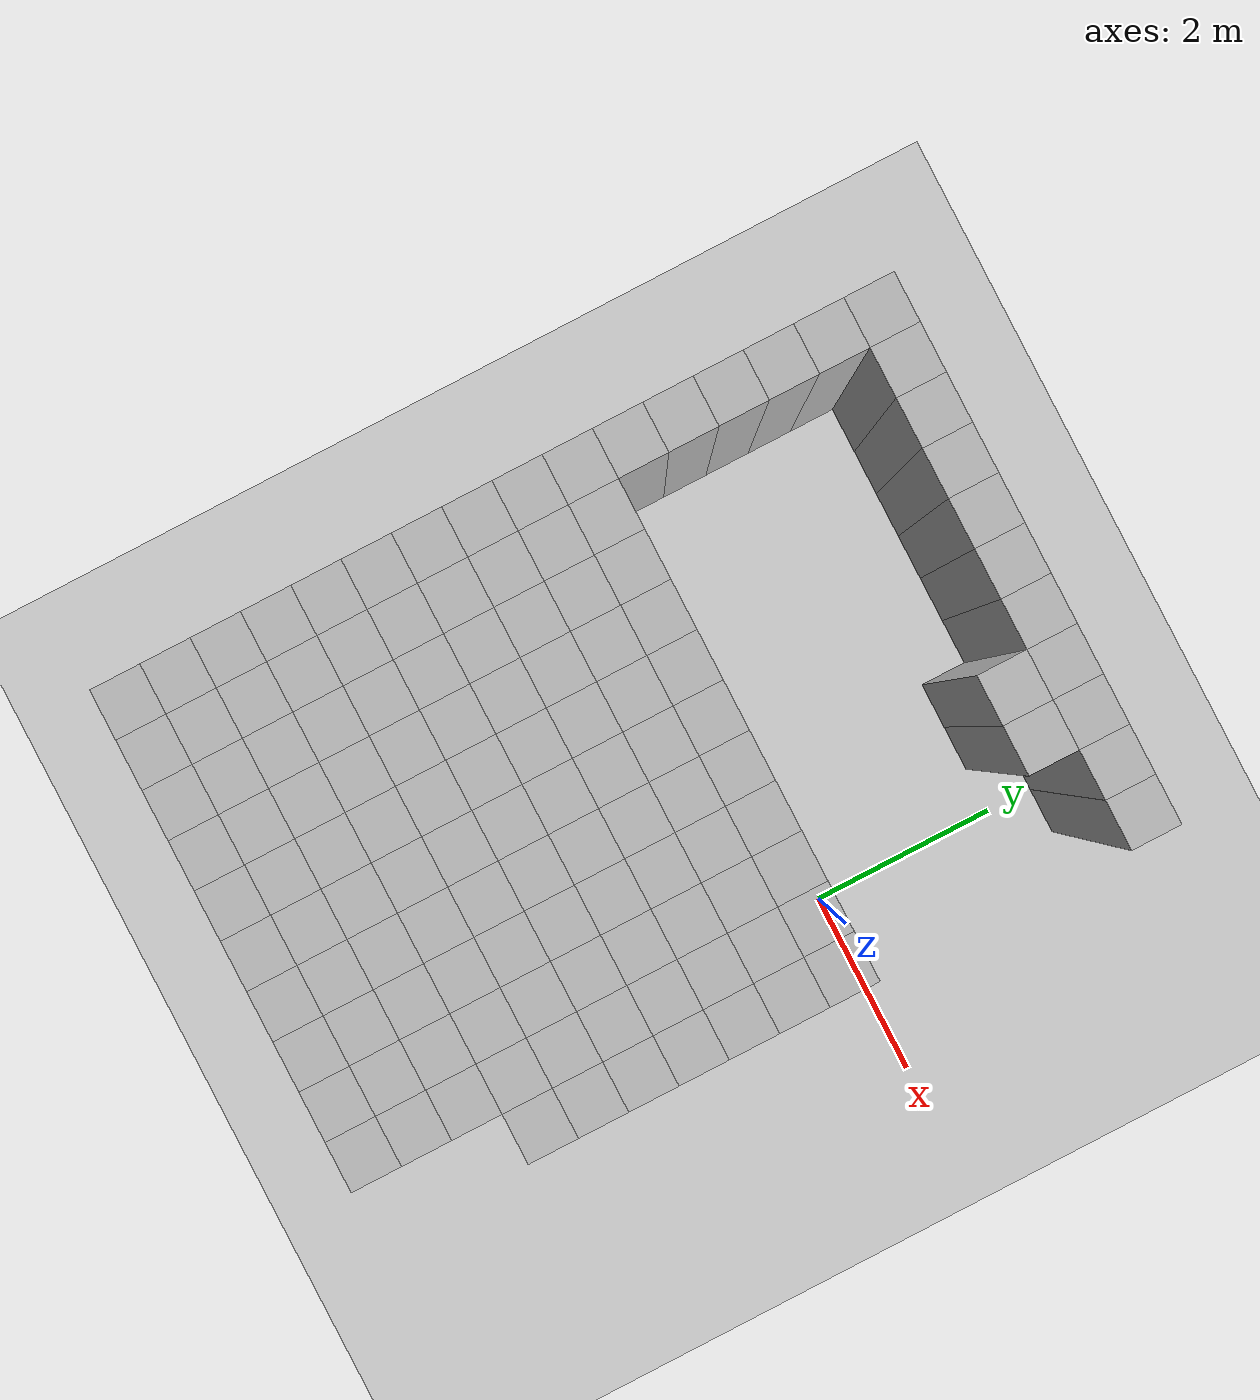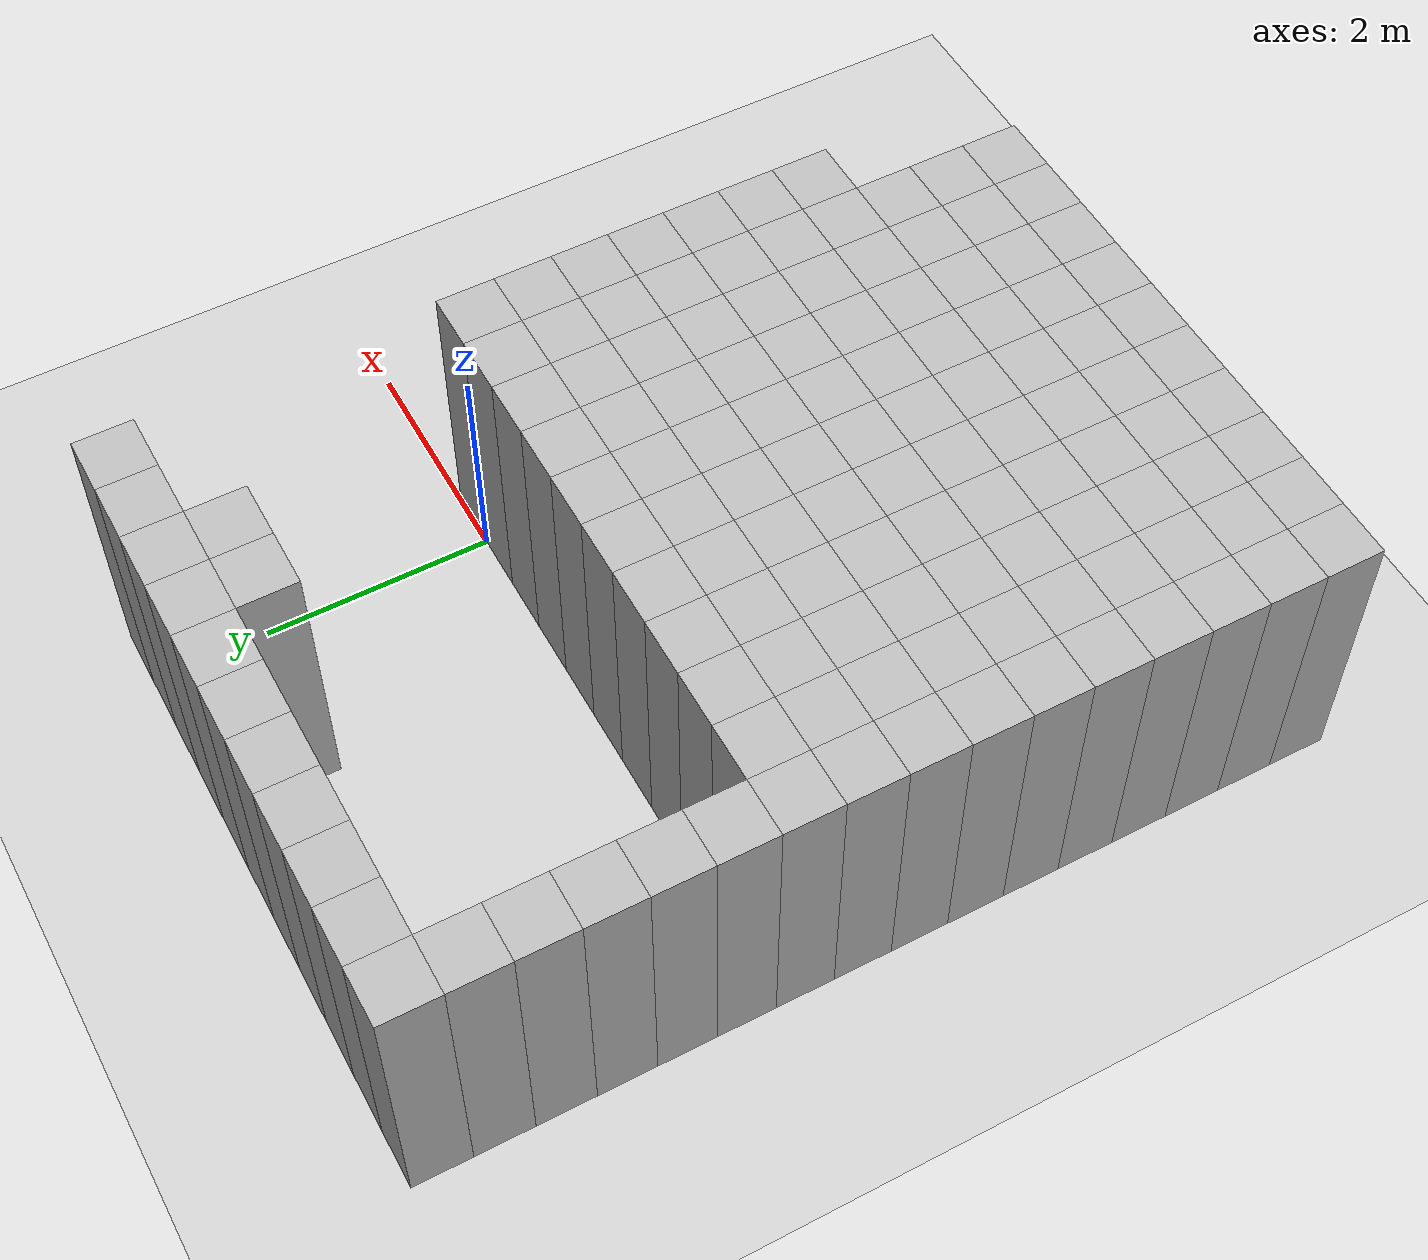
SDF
<sdf version="1.6">
 <world name="map_world">
  <include><uri>model://ground_plane</uri></include>
  <include><uri>model://sun</uri></include>
  <model name="wall_0">
   <static>true</static>
   <pose>-4.750 2.750 1.250 0 0 0</pose>
   <link name="link">
    <collision name="collision"><geometry><box><size>0.500 0.500 2.500</size></box></geometry></collision>
    <visual name="visual"><geometry><box><size>0.500 0.500 2.500</size></box></geometry></visual>
   </link>
  </model>
  <model name="wall_1">
   <static>true</static>
   <pose>-4.250 2.750 1.250 0 0 0</pose>
   <link name="link">
    <collision name="collision"><geometry><box><size>0.500 0.500 2.500</size></box></geometry></collision>
    <visual name="visual"><geometry><box><size>0.500 0.500 2.500</size></box></geometry></visual>
   </link>
  </model>
  <model name="wall_2">
   <static>true</static>
   <pose>-3.750 2.750 1.250 0 0 0</pose>
   <link name="link">
    <collision name="collision"><geometry><box><size>0.500 0.500 2.500</size></box></geometry></collision>
    <visual name="visual"><geometry><box><size>0.500 0.500 2.500</size></box></geometry></visual>
   </link>
  </model>
  <model name="wall_3">
   <static>true</static>
   <pose>-3.250 2.750 1.250 0 0 0</pose>
   <link name="link">
    <collision name="collision"><geometry><box><size>0.500 0.500 2.500</size></box></geometry></collision>
    <visual name="visual"><geometry><box><size>0.500 0.500 2.500</size></box></geometry></visual>
   </link>
  </model>
  <model name="wall_4">
   <static>true</static>
   <pose>-2.750 2.750 1.250 0 0 0</pose>
   <link name="link">
    <collision name="collision"><geometry><box><size>0.500 0.500 2.500</size></box></geometry></collision>
    <visual name="visual"><geometry><box><size>0.500 0.500 2.500</size></box></geometry></visual>
   </link>
  </model>
  <model name="wall_5">
   <static>true</static>
   <pose>-2.250 2.750 1.250 0 0 0</pose>
   <link name="link">
    <collision name="collision"><geometry><box><size>0.500 0.500 2.500</size></box></geometry></collision>
    <visual name="visual"><geometry><box><size>0.500 0.500 2.500</size></box></geometry></visual>
   </link>
  </model>
  <model name="wall_6">
   <static>true</static>
   <pose>-1.750 2.750 1.250 0 0 0</pose>
   <link name="link">
    <collision name="collision"><geometry><box><size>0.500 0.500 2.500</size></box></geometry></collision>
    <visual name="visual"><geometry><box><size>0.500 0.500 2.500</size></box></geometry></visual>
   </link>
  </model>
  <model name="wall_7">
   <static>true</static>
   <pose>-1.250 2.750 1.250 0 0 0</pose>
   <link name="link">
    <collision name="collision"><geometry><box><size>0.500 0.500 2.500</size></box></geometry></collision>
    <visual name="visual"><geometry><box><size>0.500 0.500 2.500</size></box></geometry></visual>
   </link>
  </model>
  <model name="wall_8">
   <static>true</static>
   <pose>-0.750 2.750 1.250 0 0 0</pose>
   <link name="link">
    <collision name="collision"><geometry><box><size>0.500 0.500 2.500</size></box></geometry></collision>
    <visual name="visual"><geometry><box><size>0.500 0.500 2.500</size></box></geometry></visual>
   </link>
  </model>
  <model name="wall_9">
   <static>true</static>
   <pose>-0.250 2.750 1.250 0 0 0</pose>
   <link name="link">
    <collision name="collision"><geometry><box><size>0.500 0.500 2.500</size></box></geometry></collision>
    <visual name="visual"><geometry><box><size>0.500 0.500 2.500</size></box></geometry></visual>
   </link>
  </model>
  <model name="wall_10">
   <static>true</static>
   <pose>0.250 2.750 1.250 0 0 0</pose>
   <link name="link">
    <collision name="collision"><geometry><box><size>0.500 0.500 2.500</size></box></geometry></collision>
    <visual name="visual"><geometry><box><size>0.500 0.500 2.500</size></box></geometry></visual>
   </link>
  </model>
  <model name="wall_86">
   <static>true</static>
   <pose>-4.750 2.250 1.250 0 0 0</pose>
   <link name="link">
    <collision name="collision"><geometry><box><size>0.500 0.500 2.500</size></box></geometry></collision>
    <visual name="visual"><geometry><box><size>0.500 0.500 2.500</size></box></geometry></visual>
   </link>
  </model>
  <model name="wall_87">
   <static>true</static>
   <pose>-1.250 2.250 1.250 0 0 0</pose>
   <link name="link">
    <collision name="collision"><geometry><box><size>0.500 0.500 2.500</size></box></geometry></collision>
    <visual name="visual"><geometry><box><size>0.500 0.500 2.500</size></box></geometry></visual>
   </link>
  </model>
  <model name="wall_88">
   <static>true</static>
   <pose>-0.750 2.250 1.250 0 0 0</pose>
   <link name="link">
    <collision name="collision"><geometry><box><size>0.500 0.500 2.500</size></box></geometry></collision>
    <visual name="visual"><geometry><box><size>0.500 0.500 2.500</size></box></geometry></visual>
   </link>
  </model>
  <model name="wall_118">
   <static>true</static>
   <pose>-4.750 1.750 1.250 0 0 0</pose>
   <link name="link">
    <collision name="collision"><geometry><box><size>0.500 0.500 2.500</size></box></geometry></collision>
    <visual name="visual"><geometry><box><size>0.500 0.500 2.500</size></box></geometry></visual>
   </link>
  </model>
  <model name="wall_120">
   <static>true</static>
   <pose>-4.750 1.250 1.250 0 0 0</pose>
   <link name="link">
    <collision name="collision"><geometry><box><size>0.500 0.500 2.500</size></box></geometry></collision>
    <visual name="visual"><geometry><box><size>0.500 0.500 2.500</size></box></geometry></visual>
   </link>
  </model>
  <model name="wall_122">
   <static>true</static>
   <pose>-4.750 0.750 1.250 0 0 0</pose>
   <link name="link">
    <collision name="collision"><geometry><box><size>0.500 0.500 2.500</size></box></geometry></collision>
    <visual name="visual"><geometry><box><size>0.500 0.500 2.500</size></box></geometry></visual>
   </link>
  </model>
  <model name="wall_124">
   <static>true</static>
   <pose>-4.750 0.250 1.250 0 0 0</pose>
   <link name="link">
    <collision name="collision"><geometry><box><size>0.500 0.500 2.500</size></box></geometry></collision>
    <visual name="visual"><geometry><box><size>0.500 0.500 2.500</size></box></geometry></visual>
   </link>
  </model>
  <model name="wall_144">
   <static>true</static>
   <pose>-4.750 -0.250 1.250 0 0 0</pose>
   <link name="link">
    <collision name="collision"><geometry><box><size>0.500 0.500 2.500</size></box></geometry></collision>
    <visual name="visual"><geometry><box><size>0.500 0.500 2.500</size></box></geometry></visual>
   </link>
  </model>
  <model name="wall_145">
   <static>true</static>
   <pose>-4.250 -0.250 1.250 0 0 0</pose>
   <link name="link">
    <collision name="collision"><geometry><box><size>0.500 0.500 2.500</size></box></geometry></collision>
    <visual name="visual"><geometry><box><size>0.500 0.500 2.500</size></box></geometry></visual>
   </link>
  </model>
  <model name="wall_146">
   <static>true</static>
   <pose>-3.750 -0.250 1.250 0 0 0</pose>
   <link name="link">
    <collision name="collision"><geometry><box><size>0.500 0.500 2.500</size></box></geometry></collision>
    <visual name="visual"><geometry><box><size>0.500 0.500 2.500</size></box></geometry></visual>
   </link>
  </model>
  <model name="wall_147">
   <static>true</static>
   <pose>-3.250 -0.250 1.250 0 0 0</pose>
   <link name="link">
    <collision name="collision"><geometry><box><size>0.500 0.500 2.500</size></box></geometry></collision>
    <visual name="visual"><geometry><box><size>0.500 0.500 2.500</size></box></geometry></visual>
   </link>
  </model>
  <model name="wall_148">
   <static>true</static>
   <pose>-2.750 -0.250 1.250 0 0 0</pose>
   <link name="link">
    <collision name="collision"><geometry><box><size>0.500 0.500 2.500</size></box></geometry></collision>
    <visual name="visual"><geometry><box><size>0.500 0.500 2.500</size></box></geometry></visual>
   </link>
  </model>
  <model name="wall_149">
   <static>true</static>
   <pose>-2.250 -0.250 1.250 0 0 0</pose>
   <link name="link">
    <collision name="collision"><geometry><box><size>0.500 0.500 2.500</size></box></geometry></collision>
    <visual name="visual"><geometry><box><size>0.500 0.500 2.500</size></box></geometry></visual>
   </link>
  </model>
  <model name="wall_150">
   <static>true</static>
   <pose>-1.750 -0.250 1.250 0 0 0</pose>
   <link name="link">
    <collision name="collision"><geometry><box><size>0.500 0.500 2.500</size></box></geometry></collision>
    <visual name="visual"><geometry><box><size>0.500 0.500 2.500</size></box></geometry></visual>
   </link>
  </model>
  <model name="wall_151">
   <static>true</static>
   <pose>-1.250 -0.250 1.250 0 0 0</pose>
   <link name="link">
    <collision name="collision"><geometry><box><size>0.500 0.500 2.500</size></box></geometry></collision>
    <visual name="visual"><geometry><box><size>0.500 0.500 2.500</size></box></geometry></visual>
   </link>
  </model>
  <model name="wall_152">
   <static>true</static>
   <pose>-0.750 -0.250 1.250 0 0 0</pose>
   <link name="link">
    <collision name="collision"><geometry><box><size>0.500 0.500 2.500</size></box></geometry></collision>
    <visual name="visual"><geometry><box><size>0.500 0.500 2.500</size></box></geometry></visual>
   </link>
  </model>
  <model name="wall_153">
   <static>true</static>
   <pose>-0.250 -0.250 1.250 0 0 0</pose>
   <link name="link">
    <collision name="collision"><geometry><box><size>0.500 0.500 2.500</size></box></geometry></collision>
    <visual name="visual"><geometry><box><size>0.500 0.500 2.500</size></box></geometry></visual>
   </link>
  </model>
  <model name="wall_154">
   <static>true</static>
   <pose>0.250 -0.250 1.250 0 0 0</pose>
   <link name="link">
    <collision name="collision"><geometry><box><size>0.500 0.500 2.500</size></box></geometry></collision>
    <visual name="visual"><geometry><box><size>0.500 0.500 2.500</size></box></geometry></visual>
   </link>
  </model>
  <model name="wall_216">
   <static>true</static>
   <pose>-4.750 -0.750 1.250 0 0 0</pose>
   <link name="link">
    <collision name="collision"><geometry><box><size>0.500 0.500 2.500</size></box></geometry></collision>
    <visual name="visual"><geometry><box><size>0.500 0.500 2.500</size></box></geometry></visual>
   </link>
  </model>
  <model name="wall_217">
   <static>true</static>
   <pose>-4.250 -0.750 1.250 0 0 0</pose>
   <link name="link">
    <collision name="collision"><geometry><box><size>0.500 0.500 2.500</size></box></geometry></collision>
    <visual name="visual"><geometry><box><size>0.500 0.500 2.500</size></box></geometry></visual>
   </link>
  </model>
  <model name="wall_218">
   <static>true</static>
   <pose>-3.750 -0.750 1.250 0 0 0</pose>
   <link name="link">
    <collision name="collision"><geometry><box><size>0.500 0.500 2.500</size></box></geometry></collision>
    <visual name="visual"><geometry><box><size>0.500 0.500 2.500</size></box></geometry></visual>
   </link>
  </model>
  <model name="wall_219">
   <static>true</static>
   <pose>-3.250 -0.750 1.250 0 0 0</pose>
   <link name="link">
    <collision name="collision"><geometry><box><size>0.500 0.500 2.500</size></box></geometry></collision>
    <visual name="visual"><geometry><box><size>0.500 0.500 2.500</size></box></geometry></visual>
   </link>
  </model>
  <model name="wall_220">
   <static>true</static>
   <pose>-2.750 -0.750 1.250 0 0 0</pose>
   <link name="link">
    <collision name="collision"><geometry><box><size>0.500 0.500 2.500</size></box></geometry></collision>
    <visual name="visual"><geometry><box><size>0.500 0.500 2.500</size></box></geometry></visual>
   </link>
  </model>
  <model name="wall_221">
   <static>true</static>
   <pose>-2.250 -0.750 1.250 0 0 0</pose>
   <link name="link">
    <collision name="collision"><geometry><box><size>0.500 0.500 2.500</size></box></geometry></collision>
    <visual name="visual"><geometry><box><size>0.500 0.500 2.500</size></box></geometry></visual>
   </link>
  </model>
  <model name="wall_222">
   <static>true</static>
   <pose>-1.750 -0.750 1.250 0 0 0</pose>
   <link name="link">
    <collision name="collision"><geometry><box><size>0.500 0.500 2.500</size></box></geometry></collision>
    <visual name="visual"><geometry><box><size>0.500 0.500 2.500</size></box></geometry></visual>
   </link>
  </model>
  <model name="wall_223">
   <static>true</static>
   <pose>-1.250 -0.750 1.250 0 0 0</pose>
   <link name="link">
    <collision name="collision"><geometry><box><size>0.500 0.500 2.500</size></box></geometry></collision>
    <visual name="visual"><geometry><box><size>0.500 0.500 2.500</size></box></geometry></visual>
   </link>
  </model>
  <model name="wall_224">
   <static>true</static>
   <pose>-0.750 -0.750 1.250 0 0 0</pose>
   <link name="link">
    <collision name="collision"><geometry><box><size>0.500 0.500 2.500</size></box></geometry></collision>
    <visual name="visual"><geometry><box><size>0.500 0.500 2.500</size></box></geometry></visual>
   </link>
  </model>
  <model name="wall_225">
   <static>true</static>
   <pose>-0.250 -0.750 1.250 0 0 0</pose>
   <link name="link">
    <collision name="collision"><geometry><box><size>0.500 0.500 2.500</size></box></geometry></collision>
    <visual name="visual"><geometry><box><size>0.500 0.500 2.500</size></box></geometry></visual>
   </link>
  </model>
  <model name="wall_226">
   <static>true</static>
   <pose>0.250 -0.750 1.250 0 0 0</pose>
   <link name="link">
    <collision name="collision"><geometry><box><size>0.500 0.500 2.500</size></box></geometry></collision>
    <visual name="visual"><geometry><box><size>0.500 0.500 2.500</size></box></geometry></visual>
   </link>
  </model>
  <model name="wall_288">
   <static>true</static>
   <pose>-4.750 -1.250 1.250 0 0 0</pose>
   <link name="link">
    <collision name="collision"><geometry><box><size>0.500 0.500 2.500</size></box></geometry></collision>
    <visual name="visual"><geometry><box><size>0.500 0.500 2.500</size></box></geometry></visual>
   </link>
  </model>
  <model name="wall_289">
   <static>true</static>
   <pose>-4.250 -1.250 1.250 0 0 0</pose>
   <link name="link">
    <collision name="collision"><geometry><box><size>0.500 0.500 2.500</size></box></geometry></collision>
    <visual name="visual"><geometry><box><size>0.500 0.500 2.500</size></box></geometry></visual>
   </link>
  </model>
  <model name="wall_290">
   <static>true</static>
   <pose>-3.750 -1.250 1.250 0 0 0</pose>
   <link name="link">
    <collision name="collision"><geometry><box><size>0.500 0.500 2.500</size></box></geometry></collision>
    <visual name="visual"><geometry><box><size>0.500 0.500 2.500</size></box></geometry></visual>
   </link>
  </model>
  <model name="wall_291">
   <static>true</static>
   <pose>-3.250 -1.250 1.250 0 0 0</pose>
   <link name="link">
    <collision name="collision"><geometry><box><size>0.500 0.500 2.500</size></box></geometry></collision>
    <visual name="visual"><geometry><box><size>0.500 0.500 2.500</size></box></geometry></visual>
   </link>
  </model>
  <model name="wall_292">
   <static>true</static>
   <pose>-2.750 -1.250 1.250 0 0 0</pose>
   <link name="link">
    <collision name="collision"><geometry><box><size>0.500 0.500 2.500</size></box></geometry></collision>
    <visual name="visual"><geometry><box><size>0.500 0.500 2.500</size></box></geometry></visual>
   </link>
  </model>
  <model name="wall_293">
   <static>true</static>
   <pose>-2.250 -1.250 1.250 0 0 0</pose>
   <link name="link">
    <collision name="collision"><geometry><box><size>0.500 0.500 2.500</size></box></geometry></collision>
    <visual name="visual"><geometry><box><size>0.500 0.500 2.500</size></box></geometry></visual>
   </link>
  </model>
  <model name="wall_294">
   <static>true</static>
   <pose>-1.750 -1.250 1.250 0 0 0</pose>
   <link name="link">
    <collision name="collision"><geometry><box><size>0.500 0.500 2.500</size></box></geometry></collision>
    <visual name="visual"><geometry><box><size>0.500 0.500 2.500</size></box></geometry></visual>
   </link>
  </model>
  <model name="wall_295">
   <static>true</static>
   <pose>-1.250 -1.250 1.250 0 0 0</pose>
   <link name="link">
    <collision name="collision"><geometry><box><size>0.500 0.500 2.500</size></box></geometry></collision>
    <visual name="visual"><geometry><box><size>0.500 0.500 2.500</size></box></geometry></visual>
   </link>
  </model>
  <model name="wall_296">
   <static>true</static>
   <pose>-0.750 -1.250 1.250 0 0 0</pose>
   <link name="link">
    <collision name="collision"><geometry><box><size>0.500 0.500 2.500</size></box></geometry></collision>
    <visual name="visual"><geometry><box><size>0.500 0.500 2.500</size></box></geometry></visual>
   </link>
  </model>
  <model name="wall_297">
   <static>true</static>
   <pose>-0.250 -1.250 1.250 0 0 0</pose>
   <link name="link">
    <collision name="collision"><geometry><box><size>0.500 0.500 2.500</size></box></geometry></collision>
    <visual name="visual"><geometry><box><size>0.500 0.500 2.500</size></box></geometry></visual>
   </link>
  </model>
  <model name="wall_298">
   <static>true</static>
   <pose>0.250 -1.250 1.250 0 0 0</pose>
   <link name="link">
    <collision name="collision"><geometry><box><size>0.500 0.500 2.500</size></box></geometry></collision>
    <visual name="visual"><geometry><box><size>0.500 0.500 2.500</size></box></geometry></visual>
   </link>
  </model>
  <model name="wall_360">
   <static>true</static>
   <pose>-4.750 -1.750 1.250 0 0 0</pose>
   <link name="link">
    <collision name="collision"><geometry><box><size>0.500 0.500 2.500</size></box></geometry></collision>
    <visual name="visual"><geometry><box><size>0.500 0.500 2.500</size></box></geometry></visual>
   </link>
  </model>
  <model name="wall_361">
   <static>true</static>
   <pose>-4.250 -1.750 1.250 0 0 0</pose>
   <link name="link">
    <collision name="collision"><geometry><box><size>0.500 0.500 2.500</size></box></geometry></collision>
    <visual name="visual"><geometry><box><size>0.500 0.500 2.500</size></box></geometry></visual>
   </link>
  </model>
  <model name="wall_362">
   <static>true</static>
   <pose>-3.750 -1.750 1.250 0 0 0</pose>
   <link name="link">
    <collision name="collision"><geometry><box><size>0.500 0.500 2.500</size></box></geometry></collision>
    <visual name="visual"><geometry><box><size>0.500 0.500 2.500</size></box></geometry></visual>
   </link>
  </model>
  <model name="wall_363">
   <static>true</static>
   <pose>-3.250 -1.750 1.250 0 0 0</pose>
   <link name="link">
    <collision name="collision"><geometry><box><size>0.500 0.500 2.500</size></box></geometry></collision>
    <visual name="visual"><geometry><box><size>0.500 0.500 2.500</size></box></geometry></visual>
   </link>
  </model>
  <model name="wall_364">
   <static>true</static>
   <pose>-2.750 -1.750 1.250 0 0 0</pose>
   <link name="link">
    <collision name="collision"><geometry><box><size>0.500 0.500 2.500</size></box></geometry></collision>
    <visual name="visual"><geometry><box><size>0.500 0.500 2.500</size></box></geometry></visual>
   </link>
  </model>
  <model name="wall_365">
   <static>true</static>
   <pose>-2.250 -1.750 1.250 0 0 0</pose>
   <link name="link">
    <collision name="collision"><geometry><box><size>0.500 0.500 2.500</size></box></geometry></collision>
    <visual name="visual"><geometry><box><size>0.500 0.500 2.500</size></box></geometry></visual>
   </link>
  </model>
  <model name="wall_366">
   <static>true</static>
   <pose>-1.750 -1.750 1.250 0 0 0</pose>
   <link name="link">
    <collision name="collision"><geometry><box><size>0.500 0.500 2.500</size></box></geometry></collision>
    <visual name="visual"><geometry><box><size>0.500 0.500 2.500</size></box></geometry></visual>
   </link>
  </model>
  <model name="wall_367">
   <static>true</static>
   <pose>-1.250 -1.750 1.250 0 0 0</pose>
   <link name="link">
    <collision name="collision"><geometry><box><size>0.500 0.500 2.500</size></box></geometry></collision>
    <visual name="visual"><geometry><box><size>0.500 0.500 2.500</size></box></geometry></visual>
   </link>
  </model>
  <model name="wall_368">
   <static>true</static>
   <pose>-0.750 -1.750 1.250 0 0 0</pose>
   <link name="link">
    <collision name="collision"><geometry><box><size>0.500 0.500 2.500</size></box></geometry></collision>
    <visual name="visual"><geometry><box><size>0.500 0.500 2.500</size></box></geometry></visual>
   </link>
  </model>
  <model name="wall_369">
   <static>true</static>
   <pose>-0.250 -1.750 1.250 0 0 0</pose>
   <link name="link">
    <collision name="collision"><geometry><box><size>0.500 0.500 2.500</size></box></geometry></collision>
    <visual name="visual"><geometry><box><size>0.500 0.500 2.500</size></box></geometry></visual>
   </link>
  </model>
  <model name="wall_370">
   <static>true</static>
   <pose>0.250 -1.750 1.250 0 0 0</pose>
   <link name="link">
    <collision name="collision"><geometry><box><size>0.500 0.500 2.500</size></box></geometry></collision>
    <visual name="visual"><geometry><box><size>0.500 0.500 2.500</size></box></geometry></visual>
   </link>
  </model>
  <model name="wall_432">
   <static>true</static>
   <pose>-4.750 -2.250 1.250 0 0 0</pose>
   <link name="link">
    <collision name="collision"><geometry><box><size>0.500 0.500 2.500</size></box></geometry></collision>
    <visual name="visual"><geometry><box><size>0.500 0.500 2.500</size></box></geometry></visual>
   </link>
  </model>
  <model name="wall_433">
   <static>true</static>
   <pose>-4.250 -2.250 1.250 0 0 0</pose>
   <link name="link">
    <collision name="collision"><geometry><box><size>0.500 0.500 2.500</size></box></geometry></collision>
    <visual name="visual"><geometry><box><size>0.500 0.500 2.500</size></box></geometry></visual>
   </link>
  </model>
  <model name="wall_434">
   <static>true</static>
   <pose>-3.750 -2.250 1.250 0 0 0</pose>
   <link name="link">
    <collision name="collision"><geometry><box><size>0.500 0.500 2.500</size></box></geometry></collision>
    <visual name="visual"><geometry><box><size>0.500 0.500 2.500</size></box></geometry></visual>
   </link>
  </model>
  <model name="wall_435">
   <static>true</static>
   <pose>-3.250 -2.250 1.250 0 0 0</pose>
   <link name="link">
    <collision name="collision"><geometry><box><size>0.500 0.500 2.500</size></box></geometry></collision>
    <visual name="visual"><geometry><box><size>0.500 0.500 2.500</size></box></geometry></visual>
   </link>
  </model>
  <model name="wall_436">
   <static>true</static>
   <pose>-2.750 -2.250 1.250 0 0 0</pose>
   <link name="link">
    <collision name="collision"><geometry><box><size>0.500 0.500 2.500</size></box></geometry></collision>
    <visual name="visual"><geometry><box><size>0.500 0.500 2.500</size></box></geometry></visual>
   </link>
  </model>
  <model name="wall_437">
   <static>true</static>
   <pose>-2.250 -2.250 1.250 0 0 0</pose>
   <link name="link">
    <collision name="collision"><geometry><box><size>0.500 0.500 2.500</size></box></geometry></collision>
    <visual name="visual"><geometry><box><size>0.500 0.500 2.500</size></box></geometry></visual>
   </link>
  </model>
  <model name="wall_438">
   <static>true</static>
   <pose>-1.750 -2.250 1.250 0 0 0</pose>
   <link name="link">
    <collision name="collision"><geometry><box><size>0.500 0.500 2.500</size></box></geometry></collision>
    <visual name="visual"><geometry><box><size>0.500 0.500 2.500</size></box></geometry></visual>
   </link>
  </model>
  <model name="wall_439">
   <static>true</static>
   <pose>-1.250 -2.250 1.250 0 0 0</pose>
   <link name="link">
    <collision name="collision"><geometry><box><size>0.500 0.500 2.500</size></box></geometry></collision>
    <visual name="visual"><geometry><box><size>0.500 0.500 2.500</size></box></geometry></visual>
   </link>
  </model>
  <model name="wall_440">
   <static>true</static>
   <pose>-0.750 -2.250 1.250 0 0 0</pose>
   <link name="link">
    <collision name="collision"><geometry><box><size>0.500 0.500 2.500</size></box></geometry></collision>
    <visual name="visual"><geometry><box><size>0.500 0.500 2.500</size></box></geometry></visual>
   </link>
  </model>
  <model name="wall_441">
   <static>true</static>
   <pose>-0.250 -2.250 1.250 0 0 0</pose>
   <link name="link">
    <collision name="collision"><geometry><box><size>0.500 0.500 2.500</size></box></geometry></collision>
    <visual name="visual"><geometry><box><size>0.500 0.500 2.500</size></box></geometry></visual>
   </link>
  </model>
  <model name="wall_442">
   <static>true</static>
   <pose>0.250 -2.250 1.250 0 0 0</pose>
   <link name="link">
    <collision name="collision"><geometry><box><size>0.500 0.500 2.500</size></box></geometry></collision>
    <visual name="visual"><geometry><box><size>0.500 0.500 2.500</size></box></geometry></visual>
   </link>
  </model>
  <model name="wall_504">
   <static>true</static>
   <pose>-4.750 -2.750 1.250 0 0 0</pose>
   <link name="link">
    <collision name="collision"><geometry><box><size>0.500 0.500 2.500</size></box></geometry></collision>
    <visual name="visual"><geometry><box><size>0.500 0.500 2.500</size></box></geometry></visual>
   </link>
  </model>
  <model name="wall_505">
   <static>true</static>
   <pose>-4.250 -2.750 1.250 0 0 0</pose>
   <link name="link">
    <collision name="collision"><geometry><box><size>0.500 0.500 2.500</size></box></geometry></collision>
    <visual name="visual"><geometry><box><size>0.500 0.500 2.500</size></box></geometry></visual>
   </link>
  </model>
  <model name="wall_506">
   <static>true</static>
   <pose>-3.750 -2.750 1.250 0 0 0</pose>
   <link name="link">
    <collision name="collision"><geometry><box><size>0.500 0.500 2.500</size></box></geometry></collision>
    <visual name="visual"><geometry><box><size>0.500 0.500 2.500</size></box></geometry></visual>
   </link>
  </model>
  <model name="wall_507">
   <static>true</static>
   <pose>-3.250 -2.750 1.250 0 0 0</pose>
   <link name="link">
    <collision name="collision"><geometry><box><size>0.500 0.500 2.500</size></box></geometry></collision>
    <visual name="visual"><geometry><box><size>0.500 0.500 2.500</size></box></geometry></visual>
   </link>
  </model>
  <model name="wall_508">
   <static>true</static>
   <pose>-2.750 -2.750 1.250 0 0 0</pose>
   <link name="link">
    <collision name="collision"><geometry><box><size>0.500 0.500 2.500</size></box></geometry></collision>
    <visual name="visual"><geometry><box><size>0.500 0.500 2.500</size></box></geometry></visual>
   </link>
  </model>
  <model name="wall_509">
   <static>true</static>
   <pose>-2.250 -2.750 1.250 0 0 0</pose>
   <link name="link">
    <collision name="collision"><geometry><box><size>0.500 0.500 2.500</size></box></geometry></collision>
    <visual name="visual"><geometry><box><size>0.500 0.500 2.500</size></box></geometry></visual>
   </link>
  </model>
  <model name="wall_510">
   <static>true</static>
   <pose>-1.750 -2.750 1.250 0 0 0</pose>
   <link name="link">
    <collision name="collision"><geometry><box><size>0.500 0.500 2.500</size></box></geometry></collision>
    <visual name="visual"><geometry><box><size>0.500 0.500 2.500</size></box></geometry></visual>
   </link>
  </model>
  <model name="wall_511">
   <static>true</static>
   <pose>-1.250 -2.750 1.250 0 0 0</pose>
   <link name="link">
    <collision name="collision"><geometry><box><size>0.500 0.500 2.500</size></box></geometry></collision>
    <visual name="visual"><geometry><box><size>0.500 0.500 2.500</size></box></geometry></visual>
   </link>
  </model>
  <model name="wall_512">
   <static>true</static>
   <pose>-0.750 -2.750 1.250 0 0 0</pose>
   <link name="link">
    <collision name="collision"><geometry><box><size>0.500 0.500 2.500</size></box></geometry></collision>
    <visual name="visual"><geometry><box><size>0.500 0.500 2.500</size></box></geometry></visual>
   </link>
  </model>
  <model name="wall_513">
   <static>true</static>
   <pose>-0.250 -2.750 1.250 0 0 0</pose>
   <link name="link">
    <collision name="collision"><geometry><box><size>0.500 0.500 2.500</size></box></geometry></collision>
    <visual name="visual"><geometry><box><size>0.500 0.500 2.500</size></box></geometry></visual>
   </link>
  </model>
  <model name="wall_514">
   <static>true</static>
   <pose>0.250 -2.750 1.250 0 0 0</pose>
   <link name="link">
    <collision name="collision"><geometry><box><size>0.500 0.500 2.500</size></box></geometry></collision>
    <visual name="visual"><geometry><box><size>0.500 0.500 2.500</size></box></geometry></visual>
   </link>
  </model>
  <model name="wall_576">
   <static>true</static>
   <pose>-4.750 -3.250 1.250 0 0 0</pose>
   <link name="link">
    <collision name="collision"><geometry><box><size>0.500 0.500 2.500</size></box></geometry></collision>
    <visual name="visual"><geometry><box><size>0.500 0.500 2.500</size></box></geometry></visual>
   </link>
  </model>
  <model name="wall_577">
   <static>true</static>
   <pose>-4.250 -3.250 1.250 0 0 0</pose>
   <link name="link">
    <collision name="collision"><geometry><box><size>0.500 0.500 2.500</size></box></geometry></collision>
    <visual name="visual"><geometry><box><size>0.500 0.500 2.500</size></box></geometry></visual>
   </link>
  </model>
  <model name="wall_578">
   <static>true</static>
   <pose>-3.750 -3.250 1.250 0 0 0</pose>
   <link name="link">
    <collision name="collision"><geometry><box><size>0.500 0.500 2.500</size></box></geometry></collision>
    <visual name="visual"><geometry><box><size>0.500 0.500 2.500</size></box></geometry></visual>
   </link>
  </model>
  <model name="wall_579">
   <static>true</static>
   <pose>-3.250 -3.250 1.250 0 0 0</pose>
   <link name="link">
    <collision name="collision"><geometry><box><size>0.500 0.500 2.500</size></box></geometry></collision>
    <visual name="visual"><geometry><box><size>0.500 0.500 2.500</size></box></geometry></visual>
   </link>
  </model>
  <model name="wall_580">
   <static>true</static>
   <pose>-2.750 -3.250 1.250 0 0 0</pose>
   <link name="link">
    <collision name="collision"><geometry><box><size>0.500 0.500 2.500</size></box></geometry></collision>
    <visual name="visual"><geometry><box><size>0.500 0.500 2.500</size></box></geometry></visual>
   </link>
  </model>
  <model name="wall_581">
   <static>true</static>
   <pose>-2.250 -3.250 1.250 0 0 0</pose>
   <link name="link">
    <collision name="collision"><geometry><box><size>0.500 0.500 2.500</size></box></geometry></collision>
    <visual name="visual"><geometry><box><size>0.500 0.500 2.500</size></box></geometry></visual>
   </link>
  </model>
  <model name="wall_582">
   <static>true</static>
   <pose>-1.750 -3.250 1.250 0 0 0</pose>
   <link name="link">
    <collision name="collision"><geometry><box><size>0.500 0.500 2.500</size></box></geometry></collision>
    <visual name="visual"><geometry><box><size>0.500 0.500 2.500</size></box></geometry></visual>
   </link>
  </model>
  <model name="wall_583">
   <static>true</static>
   <pose>-1.250 -3.250 1.250 0 0 0</pose>
   <link name="link">
    <collision name="collision"><geometry><box><size>0.500 0.500 2.500</size></box></geometry></collision>
    <visual name="visual"><geometry><box><size>0.500 0.500 2.500</size></box></geometry></visual>
   </link>
  </model>
  <model name="wall_584">
   <static>true</static>
   <pose>-0.750 -3.250 1.250 0 0 0</pose>
   <link name="link">
    <collision name="collision"><geometry><box><size>0.500 0.500 2.500</size></box></geometry></collision>
    <visual name="visual"><geometry><box><size>0.500 0.500 2.500</size></box></geometry></visual>
   </link>
  </model>
  <model name="wall_585">
   <static>true</static>
   <pose>-0.250 -3.250 1.250 0 0 0</pose>
   <link name="link">
    <collision name="collision"><geometry><box><size>0.500 0.500 2.500</size></box></geometry></collision>
    <visual name="visual"><geometry><box><size>0.500 0.500 2.500</size></box></geometry></visual>
   </link>
  </model>
  <model name="wall_586">
   <static>true</static>
   <pose>0.250 -3.250 1.250 0 0 0</pose>
   <link name="link">
    <collision name="collision"><geometry><box><size>0.500 0.500 2.500</size></box></geometry></collision>
    <visual name="visual"><geometry><box><size>0.500 0.500 2.500</size></box></geometry></visual>
   </link>
  </model>
  <model name="wall_648">
   <static>true</static>
   <pose>-4.750 -3.750 1.250 0 0 0</pose>
   <link name="link">
    <collision name="collision"><geometry><box><size>0.500 0.500 2.500</size></box></geometry></collision>
    <visual name="visual"><geometry><box><size>0.500 0.500 2.500</size></box></geometry></visual>
   </link>
  </model>
  <model name="wall_649">
   <static>true</static>
   <pose>-4.250 -3.750 1.250 0 0 0</pose>
   <link name="link">
    <collision name="collision"><geometry><box><size>0.500 0.500 2.500</size></box></geometry></collision>
    <visual name="visual"><geometry><box><size>0.500 0.500 2.500</size></box></geometry></visual>
   </link>
  </model>
  <model name="wall_650">
   <static>true</static>
   <pose>-3.750 -3.750 1.250 0 0 0</pose>
   <link name="link">
    <collision name="collision"><geometry><box><size>0.500 0.500 2.500</size></box></geometry></collision>
    <visual name="visual"><geometry><box><size>0.500 0.500 2.500</size></box></geometry></visual>
   </link>
  </model>
  <model name="wall_651">
   <static>true</static>
   <pose>-3.250 -3.750 1.250 0 0 0</pose>
   <link name="link">
    <collision name="collision"><geometry><box><size>0.500 0.500 2.500</size></box></geometry></collision>
    <visual name="visual"><geometry><box><size>0.500 0.500 2.500</size></box></geometry></visual>
   </link>
  </model>
  <model name="wall_652">
   <static>true</static>
   <pose>-2.750 -3.750 1.250 0 0 0</pose>
   <link name="link">
    <collision name="collision"><geometry><box><size>0.500 0.500 2.500</size></box></geometry></collision>
    <visual name="visual"><geometry><box><size>0.500 0.500 2.500</size></box></geometry></visual>
   </link>
  </model>
  <model name="wall_653">
   <static>true</static>
   <pose>-2.250 -3.750 1.250 0 0 0</pose>
   <link name="link">
    <collision name="collision"><geometry><box><size>0.500 0.500 2.500</size></box></geometry></collision>
    <visual name="visual"><geometry><box><size>0.500 0.500 2.500</size></box></geometry></visual>
   </link>
  </model>
  <model name="wall_654">
   <static>true</static>
   <pose>-1.750 -3.750 1.250 0 0 0</pose>
   <link name="link">
    <collision name="collision"><geometry><box><size>0.500 0.500 2.500</size></box></geometry></collision>
    <visual name="visual"><geometry><box><size>0.500 0.500 2.500</size></box></geometry></visual>
   </link>
  </model>
  <model name="wall_655">
   <static>true</static>
   <pose>-1.250 -3.750 1.250 0 0 0</pose>
   <link name="link">
    <collision name="collision"><geometry><box><size>0.500 0.500 2.500</size></box></geometry></collision>
    <visual name="visual"><geometry><box><size>0.500 0.500 2.500</size></box></geometry></visual>
   </link>
  </model>
  <model name="wall_656">
   <static>true</static>
   <pose>-0.750 -3.750 1.250 0 0 0</pose>
   <link name="link">
    <collision name="collision"><geometry><box><size>0.500 0.500 2.500</size></box></geometry></collision>
    <visual name="visual"><geometry><box><size>0.500 0.500 2.500</size></box></geometry></visual>
   </link>
  </model>
  <model name="wall_657">
   <static>true</static>
   <pose>-0.250 -3.750 1.250 0 0 0</pose>
   <link name="link">
    <collision name="collision"><geometry><box><size>0.500 0.500 2.500</size></box></geometry></collision>
    <visual name="visual"><geometry><box><size>0.500 0.500 2.500</size></box></geometry></visual>
   </link>
  </model>
  <model name="wall_720">
   <static>true</static>
   <pose>-4.750 -4.250 1.250 0 0 0</pose>
   <link name="link">
    <collision name="collision"><geometry><box><size>0.500 0.500 2.500</size></box></geometry></collision>
    <visual name="visual"><geometry><box><size>0.500 0.500 2.500</size></box></geometry></visual>
   </link>
  </model>
  <model name="wall_721">
   <static>true</static>
   <pose>-4.250 -4.250 1.250 0 0 0</pose>
   <link name="link">
    <collision name="collision"><geometry><box><size>0.500 0.500 2.500</size></box></geometry></collision>
    <visual name="visual"><geometry><box><size>0.500 0.500 2.500</size></box></geometry></visual>
   </link>
  </model>
  <model name="wall_722">
   <static>true</static>
   <pose>-3.750 -4.250 1.250 0 0 0</pose>
   <link name="link">
    <collision name="collision"><geometry><box><size>0.500 0.500 2.500</size></box></geometry></collision>
    <visual name="visual"><geometry><box><size>0.500 0.500 2.500</size></box></geometry></visual>
   </link>
  </model>
  <model name="wall_723">
   <static>true</static>
   <pose>-3.250 -4.250 1.250 0 0 0</pose>
   <link name="link">
    <collision name="collision"><geometry><box><size>0.500 0.500 2.500</size></box></geometry></collision>
    <visual name="visual"><geometry><box><size>0.500 0.500 2.500</size></box></geometry></visual>
   </link>
  </model>
  <model name="wall_724">
   <static>true</static>
   <pose>-2.750 -4.250 1.250 0 0 0</pose>
   <link name="link">
    <collision name="collision"><geometry><box><size>0.500 0.500 2.500</size></box></geometry></collision>
    <visual name="visual"><geometry><box><size>0.500 0.500 2.500</size></box></geometry></visual>
   </link>
  </model>
  <model name="wall_725">
   <static>true</static>
   <pose>-2.250 -4.250 1.250 0 0 0</pose>
   <link name="link">
    <collision name="collision"><geometry><box><size>0.500 0.500 2.500</size></box></geometry></collision>
    <visual name="visual"><geometry><box><size>0.500 0.500 2.500</size></box></geometry></visual>
   </link>
  </model>
  <model name="wall_726">
   <static>true</static>
   <pose>-1.750 -4.250 1.250 0 0 0</pose>
   <link name="link">
    <collision name="collision"><geometry><box><size>0.500 0.500 2.500</size></box></geometry></collision>
    <visual name="visual"><geometry><box><size>0.500 0.500 2.500</size></box></geometry></visual>
   </link>
  </model>
  <model name="wall_727">
   <static>true</static>
   <pose>-1.250 -4.250 1.250 0 0 0</pose>
   <link name="link">
    <collision name="collision"><geometry><box><size>0.500 0.500 2.500</size></box></geometry></collision>
    <visual name="visual"><geometry><box><size>0.500 0.500 2.500</size></box></geometry></visual>
   </link>
  </model>
  <model name="wall_728">
   <static>true</static>
   <pose>-0.750 -4.250 1.250 0 0 0</pose>
   <link name="link">
    <collision name="collision"><geometry><box><size>0.500 0.500 2.500</size></box></geometry></collision>
    <visual name="visual"><geometry><box><size>0.500 0.500 2.500</size></box></geometry></visual>
   </link>
  </model>
  <model name="wall_729">
   <static>true</static>
   <pose>-0.250 -4.250 1.250 0 0 0</pose>
   <link name="link">
    <collision name="collision"><geometry><box><size>0.500 0.500 2.500</size></box></geometry></collision>
    <visual name="visual"><geometry><box><size>0.500 0.500 2.500</size></box></geometry></visual>
   </link>
  </model>
  <model name="wall_792">
   <static>true</static>
   <pose>-4.750 -4.750 1.250 0 0 0</pose>
   <link name="link">
    <collision name="collision"><geometry><box><size>0.500 0.500 2.500</size></box></geometry></collision>
    <visual name="visual"><geometry><box><size>0.500 0.500 2.500</size></box></geometry></visual>
   </link>
  </model>
  <model name="wall_793">
   <static>true</static>
   <pose>-4.250 -4.750 1.250 0 0 0</pose>
   <link name="link">
    <collision name="collision"><geometry><box><size>0.500 0.500 2.500</size></box></geometry></collision>
    <visual name="visual"><geometry><box><size>0.500 0.500 2.500</size></box></geometry></visual>
   </link>
  </model>
  <model name="wall_794">
   <static>true</static>
   <pose>-3.750 -4.750 1.250 0 0 0</pose>
   <link name="link">
    <collision name="collision"><geometry><box><size>0.500 0.500 2.500</size></box></geometry></collision>
    <visual name="visual"><geometry><box><size>0.500 0.500 2.500</size></box></geometry></visual>
   </link>
  </model>
  <model name="wall_795">
   <static>true</static>
   <pose>-3.250 -4.750 1.250 0 0 0</pose>
   <link name="link">
    <collision name="collision"><geometry><box><size>0.500 0.500 2.500</size></box></geometry></collision>
    <visual name="visual"><geometry><box><size>0.500 0.500 2.500</size></box></geometry></visual>
   </link>
  </model>
  <model name="wall_796">
   <static>true</static>
   <pose>-2.750 -4.750 1.250 0 0 0</pose>
   <link name="link">
    <collision name="collision"><geometry><box><size>0.500 0.500 2.500</size></box></geometry></collision>
    <visual name="visual"><geometry><box><size>0.500 0.500 2.500</size></box></geometry></visual>
   </link>
  </model>
  <model name="wall_797">
   <static>true</static>
   <pose>-2.250 -4.750 1.250 0 0 0</pose>
   <link name="link">
    <collision name="collision"><geometry><box><size>0.500 0.500 2.500</size></box></geometry></collision>
    <visual name="visual"><geometry><box><size>0.500 0.500 2.500</size></box></geometry></visual>
   </link>
  </model>
  <model name="wall_798">
   <static>true</static>
   <pose>-1.750 -4.750 1.250 0 0 0</pose>
   <link name="link">
    <collision name="collision"><geometry><box><size>0.500 0.500 2.500</size></box></geometry></collision>
    <visual name="visual"><geometry><box><size>0.500 0.500 2.500</size></box></geometry></visual>
   </link>
  </model>
  <model name="wall_799">
   <static>true</static>
   <pose>-1.250 -4.750 1.250 0 0 0</pose>
   <link name="link">
    <collision name="collision"><geometry><box><size>0.500 0.500 2.500</size></box></geometry></collision>
    <visual name="visual"><geometry><box><size>0.500 0.500 2.500</size></box></geometry></visual>
   </link>
  </model>
  <model name="wall_800">
   <static>true</static>
   <pose>-0.750 -4.750 1.250 0 0 0</pose>
   <link name="link">
    <collision name="collision"><geometry><box><size>0.500 0.500 2.500</size></box></geometry></collision>
    <visual name="visual"><geometry><box><size>0.500 0.500 2.500</size></box></geometry></visual>
   </link>
  </model>
  <model name="wall_801">
   <static>true</static>
   <pose>-0.250 -4.750 1.250 0 0 0</pose>
   <link name="link">
    <collision name="collision"><geometry><box><size>0.500 0.500 2.500</size></box></geometry></collision>
    <visual name="visual"><geometry><box><size>0.500 0.500 2.500</size></box></geometry></visual>
   </link>
  </model>
 </world>
</sdf>
